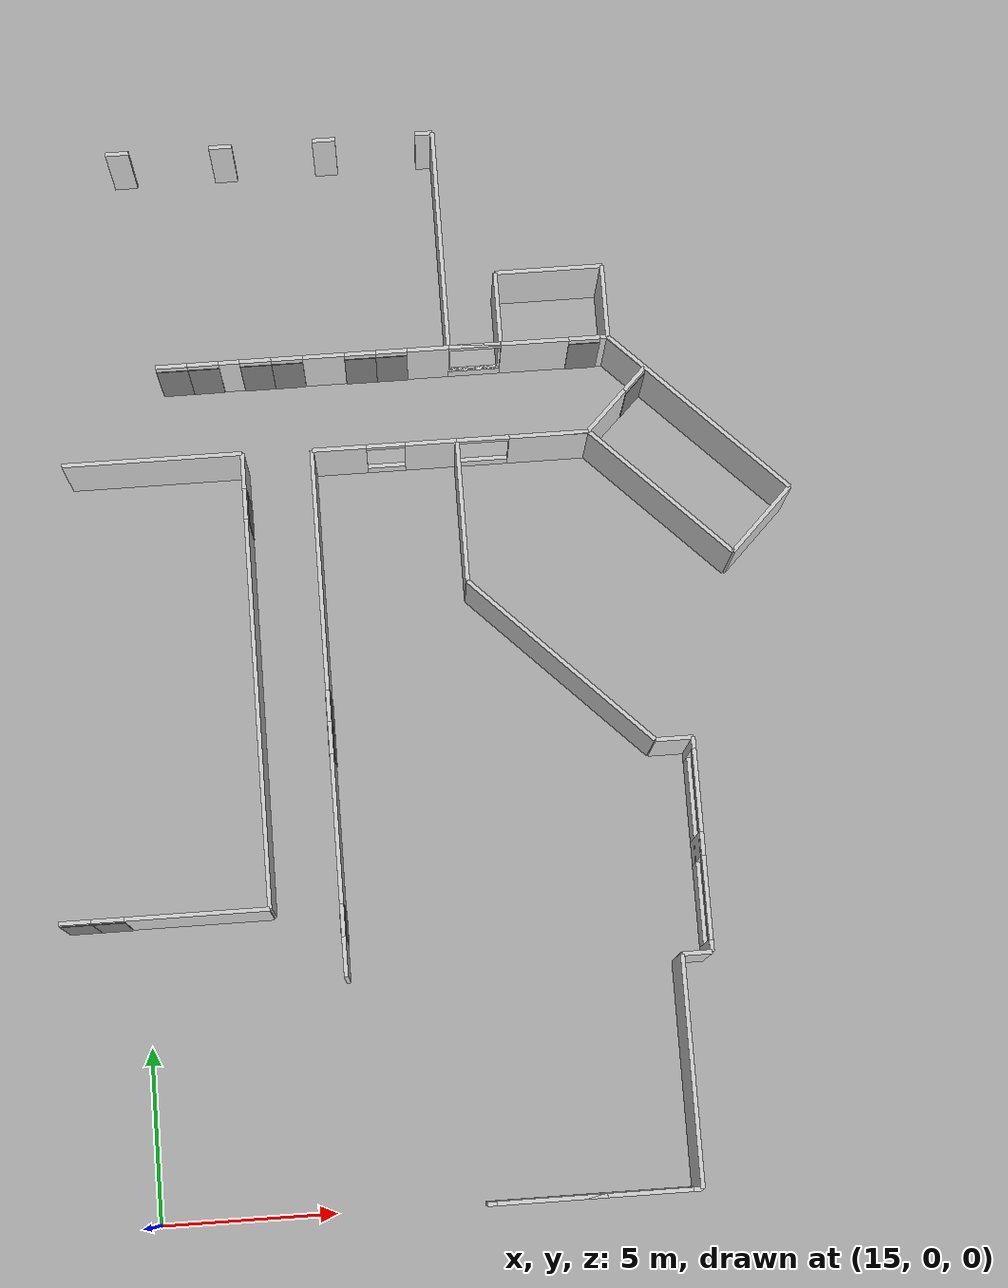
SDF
<sdf version="1.10">
 <model name="fourth_floor">
  <static>true</static>
  <link name="exteriors_018_windows_block_post_11">
   <pose>15.5797 31.0451 1.3750 0 0 0.000000</pose>
   <collision name="exteriors_018_windows_block_post_11_collision">
    <geometry><box><size>0.6794 0.1199 2.7501</size></box></geometry>
   </collision>
   <visual name="exteriors_018_windows_block_post_11_visual">
    <geometry><box><size>0.6794 0.1199 2.7501</size></box></geometry>
    <material><ambient>0.82 0.82 0.82 1</ambient><diffuse>0.82 0.82 0.82 1</diffuse></material>
   </visual>
  </link>
  <link name="exteriors_018_windows_block_post_12">
   <pose>18.6277 31.0451 1.3750 0 0 0.000000</pose>
   <collision name="exteriors_018_windows_block_post_12_collision">
    <geometry><box><size>0.6794 0.1199 2.7501</size></box></geometry>
   </collision>
   <visual name="exteriors_018_windows_block_post_12_visual">
    <geometry><box><size>0.6794 0.1199 2.7501</size></box></geometry>
    <material><ambient>0.82 0.82 0.82 1</ambient><diffuse>0.82 0.82 0.82 1</diffuse></material>
   </visual>
  </link>
  <link name="exteriors_018_windows_block_post_13">
   <pose>21.6757 31.0451 1.3750 0 0 0.000000</pose>
   <collision name="exteriors_018_windows_block_post_13_collision">
    <geometry><box><size>0.6794 0.1199 2.7501</size></box></geometry>
   </collision>
   <visual name="exteriors_018_windows_block_post_13_visual">
    <geometry><box><size>0.6794 0.1199 2.7501</size></box></geometry>
    <material><ambient>0.82 0.82 0.82 1</ambient><diffuse>0.82 0.82 0.82 1</diffuse></material>
   </visual>
  </link>
  <link name="exteriors_019_solid">
   <pose>24.6380 31.0451 1.3750 0 0 0.000000</pose>
   <collision name="exteriors_019_solid_collision">
    <geometry><box><size>0.5080 0.1199 2.7501</size></box></geometry>
   </collision>
   <visual name="exteriors_019_solid_visual">
    <geometry><box><size>0.5080 0.1199 2.7501</size></box></geometry>
    <material><ambient>0.82 0.82 0.82 1</ambient><diffuse>0.82 0.82 0.82 1</diffuse></material>
   </visual>
  </link>
  <link name="exteriors_021_solid">
   <pose>24.8920 27.7431 1.3750 0 0 4.712389</pose>
   <collision name="exteriors_021_solid_collision">
    <geometry><box><size>6.6040 0.1199 2.7501</size></box></geometry>
   </collision>
   <visual name="exteriors_021_solid_visual">
    <geometry><box><size>6.6040 0.1199 2.7501</size></box></geometry>
    <material><ambient>0.82 0.82 0.82 1</ambient><diffuse>0.82 0.82 0.82 1</diffuse></material>
   </visual>
  </link>
  <link name="exteriors_023_windows_block_lower_strip">
   <pose>25.6540 24.4412 0.2540 0 0 0.000000</pose>
   <collision name="exteriors_023_windows_block_lower_strip_collision">
    <geometry><box><size>1.5240 0.1199 0.5080</size></box></geometry>
   </collision>
   <visual name="exteriors_023_windows_block_lower_strip_visual">
    <geometry><box><size>1.5240 0.1199 0.5080</size></box></geometry>
    <material><ambient>0.82 0.82 0.82 1</ambient><diffuse>0.82 0.82 0.82 1</diffuse></material>
   </visual>
  </link>
  <link name="exteriors_023_windows_block_upper_strip">
   <pose>25.6540 24.4412 2.6450 0 0 0.000000</pose>
   <collision name="exteriors_023_windows_block_upper_strip_collision">
    <geometry><box><size>1.5240 0.1199 0.2101</size></box></geometry>
   </collision>
   <visual name="exteriors_023_windows_block_upper_strip_visual">
    <geometry><box><size>1.5240 0.1199 0.2101</size></box></geometry>
    <material><ambient>0.82 0.82 0.82 1</ambient><diffuse>0.82 0.82 0.82 1</diffuse></material>
   </visual>
  </link>
  <link name="exteriors_025_solid">
   <pose>26.4160 25.5206 1.3750 0 0 1.570796</pose>
   <collision name="exteriors_025_solid_collision">
    <geometry><box><size>2.1590 0.1199 2.7501</size></box></geometry>
   </collision>
   <visual name="exteriors_025_solid_visual">
    <geometry><box><size>2.1590 0.1199 2.7501</size></box></geometry>
    <material><ambient>0.82 0.82 0.82 1</ambient><diffuse>0.82 0.82 0.82 1</diffuse></material>
   </visual>
  </link>
  <link name="exteriors_027_solid">
   <pose>27.9781 26.6001 1.3750 0 0 0.000000</pose>
   <collision name="exteriors_027_solid_collision">
    <geometry><box><size>3.1242 0.1199 2.7501</size></box></geometry>
   </collision>
   <visual name="exteriors_027_solid_visual">
    <geometry><box><size>3.1242 0.1199 2.7501</size></box></geometry>
    <material><ambient>0.82 0.82 0.82 1</ambient><diffuse>0.82 0.82 0.82 1</diffuse></material>
   </visual>
  </link>
  <link name="exteriors_029_solid">
   <pose>29.5402 25.5206 1.3750 0 0 4.712389</pose>
   <collision name="exteriors_029_solid_collision">
    <geometry><box><size>2.1590 0.1199 2.7501</size></box></geometry>
   </collision>
   <visual name="exteriors_029_solid_visual">
    <geometry><box><size>2.1590 0.1199 2.7501</size></box></geometry>
    <material><ambient>0.82 0.82 0.82 1</ambient><diffuse>0.82 0.82 0.82 1</diffuse></material>
   </visual>
  </link>
  <link name="exteriors_031_solid">
   <pose>31.9649 22.0165 1.3750 0 0 5.497787</pose>
   <collision name="exteriors_031_solid_collision">
    <geometry><box><size>6.8580 0.1199 2.7501</size></box></geometry>
   </collision>
   <visual name="exteriors_031_solid_visual">
    <geometry><box><size>6.8580 0.1199 2.7501</size></box></geometry>
    <material><ambient>0.82 0.82 0.82 1</ambient><diffuse>0.82 0.82 0.82 1</diffuse></material>
   </visual>
  </link>
  <link name="exteriors_033_solid">
   <pose>33.4915 18.6938 1.3750 0 0 3.926991</pose>
   <collision name="exteriors_033_solid_collision">
    <geometry><box><size>2.5400 0.1199 2.7501</size></box></geometry>
   </collision>
   <visual name="exteriors_033_solid_visual">
    <geometry><box><size>2.5400 0.1199 2.7501</size></box></geometry>
    <material><ambient>0.82 0.82 0.82 1</ambient><diffuse>0.82 0.82 0.82 1</diffuse></material>
   </visual>
  </link>
  <link name="exteriors_035_solid">
   <pose>30.6717 19.7175 1.3750 0 0 2.356194</pose>
   <collision name="exteriors_035_solid_collision">
    <geometry><box><size>5.4356 0.1199 2.7501</size></box></geometry>
   </collision>
   <visual name="exteriors_035_solid_visual">
    <geometry><box><size>5.4356 0.1199 2.7501</size></box></geometry>
    <material><ambient>0.82 0.82 0.82 1</ambient><diffuse>0.82 0.82 0.82 1</diffuse></material>
   </visual>
  </link>
  <link name="exteriors_037_solid">
   <pose>27.6069 21.6393 1.3750 0 0 3.141593</pose>
   <collision name="exteriors_037_solid_collision">
    <geometry><box><size>2.2860 0.1199 2.7501</size></box></geometry>
   </collision>
   <visual name="exteriors_037_solid_visual">
    <geometry><box><size>2.2860 0.1199 2.7501</size></box></geometry>
    <material><ambient>0.82 0.82 0.82 1</ambient><diffuse>0.82 0.82 0.82 1</diffuse></material>
   </visual>
  </link>
  <link name="exteriors_038_windows_block_lower_strip">
   <pose>25.7019 21.6393 0.2540 0 0 3.141593</pose>
   <collision name="exteriors_038_windows_block_lower_strip_collision">
    <geometry><box><size>1.5240 0.1199 0.5080</size></box></geometry>
   </collision>
   <visual name="exteriors_038_windows_block_lower_strip_visual">
    <geometry><box><size>1.5240 0.1199 0.5080</size></box></geometry>
    <material><ambient>0.82 0.82 0.82 1</ambient><diffuse>0.82 0.82 0.82 1</diffuse></material>
   </visual>
  </link>
  <link name="exteriors_038_windows_block_upper_strip">
   <pose>25.7019 21.6393 2.6450 0 0 3.141593</pose>
   <collision name="exteriors_038_windows_block_upper_strip_collision">
    <geometry><box><size>1.5240 0.1199 0.2101</size></box></geometry>
   </collision>
   <visual name="exteriors_038_windows_block_upper_strip_visual">
    <geometry><box><size>1.5240 0.1199 0.2101</size></box></geometry>
    <material><ambient>0.82 0.82 0.82 1</ambient><diffuse>0.82 0.82 0.82 1</diffuse></material>
   </visual>
  </link>
  <link name="exteriors_040_solid">
   <pose>24.9399 19.5565 1.3750 0 0 4.712389</pose>
   <collision name="exteriors_040_solid_collision">
    <geometry><box><size>4.1656 0.1199 2.7501</size></box></geometry>
   </collision>
   <visual name="exteriors_040_solid_visual">
    <geometry><box><size>4.1656 0.1199 2.7501</size></box></geometry>
    <material><ambient>0.82 0.82 0.82 1</ambient><diffuse>0.82 0.82 0.82 1</diffuse></material>
   </visual>
  </link>
  <link name="exteriors_042_solid">
   <pose>27.4185 14.9952 1.3750 0 0 5.497787</pose>
   <collision name="exteriors_042_solid_collision">
    <geometry><box><size>7.0104 0.1199 2.7501</size></box></geometry>
   </collision>
   <visual name="exteriors_042_solid_visual">
    <geometry><box><size>7.0104 0.1199 2.7501</size></box></geometry>
    <material><ambient>0.82 0.82 0.82 1</ambient><diffuse>0.82 0.82 0.82 1</diffuse></material>
   </visual>
  </link>
  <link name="exteriors_044_solid">
   <pose>30.4304 12.5166 1.3750 0 0 0.000000</pose>
   <collision name="exteriors_044_solid_collision">
    <geometry><box><size>1.0668 0.1199 2.7501</size></box></geometry>
   </collision>
   <visual name="exteriors_044_solid_visual">
    <geometry><box><size>1.0668 0.1199 2.7501</size></box></geometry>
    <material><ambient>0.82 0.82 0.82 1</ambient><diffuse>0.82 0.82 0.82 1</diffuse></material>
   </visual>
  </link>
  <link name="exteriors_046_solid">
   <pose>30.9638 12.3515 1.3750 0 0 4.712389</pose>
   <collision name="exteriors_046_solid_collision">
    <geometry><box><size>0.3302 0.1199 2.7501</size></box></geometry>
   </collision>
   <visual name="exteriors_046_solid_visual">
    <geometry><box><size>0.3302 0.1199 2.7501</size></box></geometry>
    <material><ambient>0.82 0.82 0.82 1</ambient><diffuse>0.82 0.82 0.82 1</diffuse></material>
   </visual>
  </link>
  <link name="exteriors_047_windows_block_lower_strip">
   <pose>30.9638 9.4781 0.5461 0 0 4.712389</pose>
   <collision name="exteriors_047_windows_block_lower_strip_collision">
    <geometry><box><size>5.4165 0.1199 1.0922</size></box></geometry>
   </collision>
   <visual name="exteriors_047_windows_block_lower_strip_visual">
    <geometry><box><size>5.4165 0.1199 1.0922</size></box></geometry>
    <material><ambient>0.82 0.82 0.82 1</ambient><diffuse>0.82 0.82 0.82 1</diffuse></material>
   </visual>
  </link>
  <link name="exteriors_047_windows_block_upper_strip">
   <pose>30.9638 9.4781 2.5942 0 0 4.712389</pose>
   <collision name="exteriors_047_windows_block_upper_strip_collision">
    <geometry><box><size>5.4165 0.1199 0.3117</size></box></geometry>
   </collision>
   <visual name="exteriors_047_windows_block_upper_strip_visual">
    <geometry><box><size>5.4165 0.1199 0.3117</size></box></geometry>
    <material><ambient>0.82 0.82 0.82 1</ambient><diffuse>0.82 0.82 0.82 1</diffuse></material>
   </visual>
  </link>
  <link name="exteriors_047_windows_block_post_1">
   <pose>30.9638 9.4781 1.3750 0 0 4.712389</pose>
   <collision name="exteriors_047_windows_block_post_1_collision">
    <geometry><box><size>0.6794 0.1199 2.7501</size></box></geometry>
   </collision>
   <visual name="exteriors_047_windows_block_post_1_visual">
    <geometry><box><size>0.6794 0.1199 2.7501</size></box></geometry>
    <material><ambient>0.82 0.82 0.82 1</ambient><diffuse>0.82 0.82 0.82 1</diffuse></material>
   </visual>
  </link>
  <link name="exteriors_048_solid">
   <pose>30.9638 6.6048 1.3750 0 0 4.712389</pose>
   <collision name="exteriors_048_solid_collision">
    <geometry><box><size>0.3302 0.1199 2.7501</size></box></geometry>
   </collision>
   <visual name="exteriors_048_solid_visual">
    <geometry><box><size>0.3302 0.1199 2.7501</size></box></geometry>
    <material><ambient>0.82 0.82 0.82 1</ambient><diffuse>0.82 0.82 0.82 1</diffuse></material>
   </visual>
  </link>
  <link name="exteriors_050_solid">
   <pose>30.5447 6.4397 1.3750 0 0 3.141593</pose>
   <collision name="exteriors_050_solid_collision">
    <geometry><box><size>0.8382 0.1199 2.7501</size></box></geometry>
   </collision>
   <visual name="exteriors_050_solid_visual">
    <geometry><box><size>0.8382 0.1199 2.7501</size></box></geometry>
    <material><ambient>0.82 0.82 0.82 1</ambient><diffuse>0.82 0.82 0.82 1</diffuse></material>
   </visual>
  </link>
  <link name="exteriors_052_solid">
   <pose>30.1256 3.2139 1.3750 0 0 4.712389</pose>
   <collision name="exteriors_052_solid_collision">
    <geometry><box><size>6.4516 0.1199 2.7501</size></box></geometry>
   </collision>
   <visual name="exteriors_052_solid_visual">
    <geometry><box><size>6.4516 0.1199 2.7501</size></box></geometry>
    <material><ambient>0.82 0.82 0.82 1</ambient><diffuse>0.82 0.82 0.82 1</diffuse></material>
   </visual>
  </link>
  <link name="exteriors_054_solid">
   <pose>29.9986 -0.0119 1.3750 0 0 3.141593</pose>
   <collision name="exteriors_054_solid_collision">
    <geometry><box><size>0.2540 0.1199 2.7501</size></box></geometry>
   </collision>
   <visual name="exteriors_054_solid_visual">
    <geometry><box><size>0.2540 0.1199 2.7501</size></box></geometry>
    <material><ambient>0.82 0.82 0.82 1</ambient><diffuse>0.82 0.82 0.82 1</diffuse></material>
   </visual>
  </link>
  <link name="exteriors_055_windows_block_lower_strip">
   <pose>27.1634 -0.0119 0.5461 0 0 3.141593</pose>
   <collision name="exteriors_055_windows_block_lower_strip_collision">
    <geometry><box><size>5.4165 0.1199 1.0922</size></box></geometry>
   </collision>
   <visual name="exteriors_055_windows_block_lower_strip_visual">
    <geometry><box><size>5.4165 0.1199 1.0922</size></box></geometry>
    <material><ambient>0.82 0.82 0.82 1</ambient><diffuse>0.82 0.82 0.82 1</diffuse></material>
   </visual>
  </link>
  <link name="exteriors_055_windows_block_upper_strip">
   <pose>27.1634 -0.0119 2.5942 0 0 3.141593</pose>
   <collision name="exteriors_055_windows_block_upper_strip_collision">
    <geometry><box><size>5.4165 0.1199 0.3117</size></box></geometry>
   </collision>
   <visual name="exteriors_055_windows_block_upper_strip_visual">
    <geometry><box><size>5.4165 0.1199 0.3117</size></box></geometry>
    <material><ambient>0.82 0.82 0.82 1</ambient><diffuse>0.82 0.82 0.82 1</diffuse></material>
   </visual>
  </link>
  <link name="exteriors_055_windows_block_post_1">
   <pose>27.1634 -0.0119 1.3750 0 0 3.141593</pose>
   <collision name="exteriors_055_windows_block_post_1_collision">
    <geometry><box><size>0.6794 0.1199 2.7501</size></box></geometry>
   </collision>
   <visual name="exteriors_055_windows_block_post_1_visual">
    <geometry><box><size>0.6794 0.1199 2.7501</size></box></geometry>
    <material><ambient>0.82 0.82 0.82 1</ambient><diffuse>0.82 0.82 0.82 1</diffuse></material>
   </visual>
  </link>
  <link name="exteriors_056_solid">
   <pose>24.3281 -0.0119 1.3750 0 0 3.141593</pose>
   <collision name="exteriors_056_solid_collision">
    <geometry><box><size>0.2540 0.1199 2.7501</size></box></geometry>
   </collision>
   <visual name="exteriors_056_solid_visual">
    <geometry><box><size>0.2540 0.1199 2.7501</size></box></geometry>
    <material><ambient>0.82 0.82 0.82 1</ambient><diffuse>0.82 0.82 0.82 1</diffuse></material>
   </visual>
  </link>
  <link name="hallways_040_door_lintel">
   <pose>16.8275 24.4399 2.5942 0 0 0.000000</pose>
   <collision name="hallways_040_door_lintel_collision">
    <geometry><box><size>0.9144 0.1199 0.3117</size></box></geometry>
   </collision>
   <visual name="hallways_040_door_lintel_visual">
    <geometry><box><size>0.9144 0.1199 0.3117</size></box></geometry>
    <material><ambient>0.82 0.82 0.82 1</ambient><diffuse>0.82 0.82 0.82 1</diffuse></material>
   </visual>
  </link>
  <link name="hallways_041_door_lintel">
   <pose>17.7419 24.4399 2.5942 0 0 0.000000</pose>
   <collision name="hallways_041_door_lintel_collision">
    <geometry><box><size>0.9144 0.1199 0.3117</size></box></geometry>
   </collision>
   <visual name="hallways_041_door_lintel_visual">
    <geometry><box><size>0.9144 0.1199 0.3117</size></box></geometry>
    <material><ambient>0.82 0.82 0.82 1</ambient><diffuse>0.82 0.82 0.82 1</diffuse></material>
   </visual>
  </link>
  <link name="hallways_042_solid">
   <pose>18.5039 24.4399 1.3750 0 0 0.000000</pose>
   <collision name="hallways_042_solid_collision">
    <geometry><box><size>0.6096 0.1199 2.7501</size></box></geometry>
   </collision>
   <visual name="hallways_042_solid_visual">
    <geometry><box><size>0.6096 0.1199 2.7501</size></box></geometry>
    <material><ambient>0.82 0.82 0.82 1</ambient><diffuse>0.82 0.82 0.82 1</diffuse></material>
   </visual>
  </link>
  <link name="hallways_043_door_lintel">
   <pose>19.2659 24.4399 2.5942 0 0 0.000000</pose>
   <collision name="hallways_043_door_lintel_collision">
    <geometry><box><size>0.9144 0.1199 0.3117</size></box></geometry>
   </collision>
   <visual name="hallways_043_door_lintel_visual">
    <geometry><box><size>0.9144 0.1199 0.3117</size></box></geometry>
    <material><ambient>0.82 0.82 0.82 1</ambient><diffuse>0.82 0.82 0.82 1</diffuse></material>
   </visual>
  </link>
  <link name="hallways_044_door_lintel">
   <pose>20.1803 24.4399 2.5942 0 0 0.000000</pose>
   <collision name="hallways_044_door_lintel_collision">
    <geometry><box><size>0.9144 0.1199 0.3117</size></box></geometry>
   </collision>
   <visual name="hallways_044_door_lintel_visual">
    <geometry><box><size>0.9144 0.1199 0.3117</size></box></geometry>
    <material><ambient>0.82 0.82 0.82 1</ambient><diffuse>0.82 0.82 0.82 1</diffuse></material>
   </visual>
  </link>
  <link name="hallways_045_solid">
   <pose>21.2471 24.4399 1.3750 0 0 0.000000</pose>
   <collision name="hallways_045_solid_collision">
    <geometry><box><size>1.2192 0.1199 2.7501</size></box></geometry>
   </collision>
   <visual name="hallways_045_solid_visual">
    <geometry><box><size>1.2192 0.1199 2.7501</size></box></geometry>
    <material><ambient>0.82 0.82 0.82 1</ambient><diffuse>0.82 0.82 0.82 1</diffuse></material>
   </visual>
  </link>
  <link name="hallways_046_door_lintel">
   <pose>22.3139 24.4399 2.5942 0 0 0.000000</pose>
   <collision name="hallways_046_door_lintel_collision">
    <geometry><box><size>0.9144 0.1199 0.3117</size></box></geometry>
   </collision>
   <visual name="hallways_046_door_lintel_visual">
    <geometry><box><size>0.9144 0.1199 0.3117</size></box></geometry>
    <material><ambient>0.82 0.82 0.82 1</ambient><diffuse>0.82 0.82 0.82 1</diffuse></material>
   </visual>
  </link>
  <link name="hallways_047_door_lintel">
   <pose>23.2283 24.4399 2.5942 0 0 0.000000</pose>
   <collision name="hallways_047_door_lintel_collision">
    <geometry><box><size>0.9144 0.1199 0.3117</size></box></geometry>
   </collision>
   <visual name="hallways_047_door_lintel_visual">
    <geometry><box><size>0.9144 0.1199 0.3117</size></box></geometry>
    <material><ambient>0.82 0.82 0.82 1</ambient><diffuse>0.82 0.82 0.82 1</diffuse></material>
   </visual>
  </link>
  <link name="hallways_048_solid">
   <pose>24.2951 24.4399 1.3750 0 0 0.000000</pose>
   <collision name="hallways_048_solid_collision">
    <geometry><box><size>1.2192 0.1199 2.7501</size></box></geometry>
   </collision>
   <visual name="hallways_048_solid_visual">
    <geometry><box><size>1.2192 0.1199 2.7501</size></box></geometry>
    <material><ambient>0.82 0.82 0.82 1</ambient><diffuse>0.82 0.82 0.82 1</diffuse></material>
   </visual>
  </link>
  <link name="hallways_049_windows_block_lower_strip">
   <pose>25.6667 24.4399 0.2540 0 0 0.000000</pose>
   <collision name="hallways_049_windows_block_lower_strip_collision">
    <geometry><box><size>1.5240 0.1199 0.5080</size></box></geometry>
   </collision>
   <visual name="hallways_049_windows_block_lower_strip_visual">
    <geometry><box><size>1.5240 0.1199 0.5080</size></box></geometry>
    <material><ambient>0.82 0.82 0.82 1</ambient><diffuse>0.82 0.82 0.82 1</diffuse></material>
   </visual>
  </link>
  <link name="hallways_049_windows_block_upper_strip">
   <pose>25.6667 24.4399 2.6450 0 0 0.000000</pose>
   <collision name="hallways_049_windows_block_upper_strip_collision">
    <geometry><box><size>1.5240 0.1199 0.2101</size></box></geometry>
   </collision>
   <visual name="hallways_049_windows_block_upper_strip_visual">
    <geometry><box><size>1.5240 0.1199 0.2101</size></box></geometry>
    <material><ambient>0.82 0.82 0.82 1</ambient><diffuse>0.82 0.82 0.82 1</diffuse></material>
   </visual>
  </link>
  <link name="hallways_050_solid">
   <pose>27.4193 24.4399 1.3750 0 0 0.000000</pose>
   <collision name="hallways_050_solid_collision">
    <geometry><box><size>1.9812 0.1199 2.7501</size></box></geometry>
   </collision>
   <visual name="hallways_050_solid_visual">
    <geometry><box><size>1.9812 0.1199 2.7501</size></box></geometry>
    <material><ambient>0.82 0.82 0.82 1</ambient><diffuse>0.82 0.82 0.82 1</diffuse></material>
   </visual>
  </link>
  <link name="hallways_051_door_lintel">
   <pose>28.8671 24.4399 2.5942 0 0 0.000000</pose>
   <collision name="hallways_051_door_lintel_collision">
    <geometry><box><size>0.9144 0.1199 0.3117</size></box></geometry>
   </collision>
   <visual name="hallways_051_door_lintel_visual">
    <geometry><box><size>0.9144 0.1199 0.3117</size></box></geometry>
    <material><ambient>0.82 0.82 0.82 1</ambient><diffuse>0.82 0.82 0.82 1</diffuse></material>
   </visual>
  </link>
  <link name="hallways_052_solid">
   <pose>29.4259 24.4399 1.3750 0 0 0.000000</pose>
   <collision name="hallways_052_solid_collision">
    <geometry><box><size>0.2032 0.1199 2.7501</size></box></geometry>
   </collision>
   <visual name="hallways_052_solid_visual">
    <geometry><box><size>0.2032 0.1199 2.7501</size></box></geometry>
    <material><ambient>0.82 0.82 0.82 1</ambient><diffuse>0.82 0.82 0.82 1</diffuse></material>
   </visual>
  </link>
  <link name="hallways_054_solid">
   <pose>30.0304 23.9370 1.3750 0 0 5.497787</pose>
   <collision name="hallways_054_solid_collision">
    <geometry><box><size>1.4224 0.1199 2.7501</size></box></geometry>
   </collision>
   <visual name="hallways_054_solid_visual">
    <geometry><box><size>1.4224 0.1199 2.7501</size></box></geometry>
    <material><ambient>0.82 0.82 0.82 1</ambient><diffuse>0.82 0.82 0.82 1</diffuse></material>
   </visual>
  </link>
  <link name="hallways_056_door_lintel">
   <pose>30.2100 23.1108 2.5942 0 0 3.926991</pose>
   <collision name="hallways_056_door_lintel_collision">
    <geometry><box><size>0.9144 0.1199 0.3117</size></box></geometry>
   </collision>
   <visual name="hallways_056_door_lintel_visual">
    <geometry><box><size>0.9144 0.1199 0.3117</size></box></geometry>
    <material><ambient>0.82 0.82 0.82 1</ambient><diffuse>0.82 0.82 0.82 1</diffuse></material>
   </visual>
  </link>
  <link name="hallways_057_solid">
   <pose>29.3120 22.2128 1.3750 0 0 3.926991</pose>
   <collision name="hallways_057_solid_collision">
    <geometry><box><size>1.6256 0.1199 2.7501</size></box></geometry>
   </collision>
   <visual name="hallways_057_solid_visual">
    <geometry><box><size>1.6256 0.1199 2.7501</size></box></geometry>
    <material><ambient>0.82 0.82 0.82 1</ambient><diffuse>0.82 0.82 0.82 1</diffuse></material>
   </visual>
  </link>
  <link name="hallways_059_solid">
   <pose>27.5942 21.6380 1.3750 0 0 3.141593</pose>
   <collision name="hallways_059_solid_collision">
    <geometry><box><size>2.2860 0.1199 2.7501</size></box></geometry>
   </collision>
   <visual name="hallways_059_solid_visual">
    <geometry><box><size>2.2860 0.1199 2.7501</size></box></geometry>
    <material><ambient>0.82 0.82 0.82 1</ambient><diffuse>0.82 0.82 0.82 1</diffuse></material>
   </visual>
  </link>
  <link name="hallways_060_windows_block_lower_strip">
   <pose>25.6892 21.6380 0.2540 0 0 3.141593</pose>
   <collision name="hallways_060_windows_block_lower_strip_collision">
    <geometry><box><size>1.5240 0.1199 0.5080</size></box></geometry>
   </collision>
   <visual name="hallways_060_windows_block_lower_strip_visual">
    <geometry><box><size>1.5240 0.1199 0.5080</size></box></geometry>
    <material><ambient>0.82 0.82 0.82 1</ambient><diffuse>0.82 0.82 0.82 1</diffuse></material>
   </visual>
  </link>
  <link name="hallways_060_windows_block_upper_strip">
   <pose>25.6892 21.6380 2.6450 0 0 3.141593</pose>
   <collision name="hallways_060_windows_block_upper_strip_collision">
    <geometry><box><size>1.5240 0.1199 0.2101</size></box></geometry>
   </collision>
   <visual name="hallways_060_windows_block_upper_strip_visual">
    <geometry><box><size>1.5240 0.1199 0.2101</size></box></geometry>
    <material><ambient>0.82 0.82 0.82 1</ambient><diffuse>0.82 0.82 0.82 1</diffuse></material>
   </visual>
  </link>
  <link name="hallways_061_solid">
   <pose>24.1779 21.6380 1.3750 0 0 3.141593</pose>
   <collision name="hallways_061_solid_collision">
    <geometry><box><size>1.4986 0.1199 2.7501</size></box></geometry>
   </collision>
   <visual name="hallways_061_solid_visual">
    <geometry><box><size>1.4986 0.1199 2.7501</size></box></geometry>
    <material><ambient>0.82 0.82 0.82 1</ambient><diffuse>0.82 0.82 0.82 1</diffuse></material>
   </visual>
  </link>
  <link name="hallways_062_windows_block_lower_strip">
   <pose>22.8698 21.6380 0.2540 0 0 3.141593</pose>
   <collision name="hallways_062_windows_block_lower_strip_collision">
    <geometry><box><size>1.1176 0.1199 0.5080</size></box></geometry>
   </collision>
   <visual name="hallways_062_windows_block_lower_strip_visual">
    <geometry><box><size>1.1176 0.1199 0.5080</size></box></geometry>
    <material><ambient>0.82 0.82 0.82 1</ambient><diffuse>0.82 0.82 0.82 1</diffuse></material>
   </visual>
  </link>
  <link name="hallways_062_windows_block_upper_strip">
   <pose>22.8698 21.6380 2.6450 0 0 3.141593</pose>
   <collision name="hallways_062_windows_block_upper_strip_collision">
    <geometry><box><size>1.1176 0.1199 0.2101</size></box></geometry>
   </collision>
   <visual name="hallways_062_windows_block_upper_strip_visual">
    <geometry><box><size>1.1176 0.1199 0.2101</size></box></geometry>
    <material><ambient>0.82 0.82 0.82 1</ambient><diffuse>0.82 0.82 0.82 1</diffuse></material>
   </visual>
  </link>
  <link name="hallways_063_solid">
   <pose>21.5236 21.6380 1.3750 0 0 3.141593</pose>
   <collision name="hallways_063_solid_collision">
    <geometry><box><size>1.5748 0.1199 2.7501</size></box></geometry>
   </collision>
   <visual name="hallways_063_solid_visual">
    <geometry><box><size>1.5748 0.1199 2.7501</size></box></geometry>
    <material><ambient>0.82 0.82 0.82 1</ambient><diffuse>0.82 0.82 0.82 1</diffuse></material>
   </visual>
  </link>
  <link name="hallways_065_solid">
   <pose>20.7362 18.1201 1.3750 0 0 4.712389</pose>
   <collision name="hallways_065_solid_collision">
    <geometry><box><size>7.0358 0.1199 2.7501</size></box></geometry>
   </collision>
   <visual name="hallways_065_solid_visual">
    <geometry><box><size>7.0358 0.1199 2.7501</size></box></geometry>
    <material><ambient>0.82 0.82 0.82 1</ambient><diffuse>0.82 0.82 0.82 1</diffuse></material>
   </visual>
  </link>
  <link name="hallways_066_door_lintel">
   <pose>20.7362 14.1450 2.5942 0 0 4.712389</pose>
   <collision name="hallways_066_door_lintel_collision">
    <geometry><box><size>0.9144 0.1199 0.3117</size></box></geometry>
   </collision>
   <visual name="hallways_066_door_lintel_visual">
    <geometry><box><size>0.9144 0.1199 0.3117</size></box></geometry>
    <material><ambient>0.82 0.82 0.82 1</ambient><diffuse>0.82 0.82 0.82 1</diffuse></material>
   </visual>
  </link>
  <link name="hallways_067_door_lintel">
   <pose>20.7362 13.2306 2.5942 0 0 4.712389</pose>
   <collision name="hallways_067_door_lintel_collision">
    <geometry><box><size>0.9144 0.1199 0.3117</size></box></geometry>
   </collision>
   <visual name="hallways_067_door_lintel_visual">
    <geometry><box><size>0.9144 0.1199 0.3117</size></box></geometry>
    <material><ambient>0.82 0.82 0.82 1</ambient><diffuse>0.82 0.82 0.82 1</diffuse></material>
   </visual>
  </link>
  <link name="hallways_068_solid">
   <pose>20.7362 10.6398 1.3750 0 0 4.712389</pose>
   <collision name="hallways_068_solid_collision">
    <geometry><box><size>4.2672 0.1199 2.7501</size></box></geometry>
   </collision>
   <visual name="hallways_068_solid_visual">
    <geometry><box><size>4.2672 0.1199 2.7501</size></box></geometry>
    <material><ambient>0.82 0.82 0.82 1</ambient><diffuse>0.82 0.82 0.82 1</diffuse></material>
   </visual>
  </link>
  <link name="hallways_069_door_lintel">
   <pose>20.7362 8.0490 2.5942 0 0 4.712389</pose>
   <collision name="hallways_069_door_lintel_collision">
    <geometry><box><size>0.9144 0.1199 0.3117</size></box></geometry>
   </collision>
   <visual name="hallways_069_door_lintel_visual">
    <geometry><box><size>0.9144 0.1199 0.3117</size></box></geometry>
    <material><ambient>0.82 0.82 0.82 1</ambient><diffuse>0.82 0.82 0.82 1</diffuse></material>
   </visual>
  </link>
  <link name="hallways_070_solid">
   <pose>20.7362 7.0330 1.3750 0 0 4.712389</pose>
   <collision name="hallways_070_solid_collision">
    <geometry><box><size>1.1176 0.1199 2.7501</size></box></geometry>
   </collision>
   <visual name="hallways_070_solid_visual">
    <geometry><box><size>1.1176 0.1199 2.7501</size></box></geometry>
    <material><ambient>0.82 0.82 0.82 1</ambient><diffuse>0.82 0.82 0.82 1</diffuse></material>
   </visual>
  </link>
  <link name="inner_walls_1_008_door_lintel">
   <pose>13.2652 8.5090 2.5942 0 0 0.000000</pose>
   <collision name="inner_walls_1_008_door_lintel_collision">
    <geometry><box><size>0.9144 0.1199 0.3117</size></box></geometry>
   </collision>
   <visual name="inner_walls_1_008_door_lintel_visual">
    <geometry><box><size>0.9144 0.1199 0.3117</size></box></geometry>
    <material><ambient>0.82 0.82 0.82 1</ambient><diffuse>0.82 0.82 0.82 1</diffuse></material>
   </visual>
  </link>
  <link name="inner_walls_1_009_door_lintel">
   <pose>14.1795 8.5090 2.5942 0 0 0.000000</pose>
   <collision name="inner_walls_1_009_door_lintel_collision">
    <geometry><box><size>0.9144 0.1199 0.3117</size></box></geometry>
   </collision>
   <visual name="inner_walls_1_009_door_lintel_visual">
    <geometry><box><size>0.9144 0.1199 0.3117</size></box></geometry>
    <material><ambient>0.82 0.82 0.82 1</ambient><diffuse>0.82 0.82 0.82 1</diffuse></material>
   </visual>
  </link>
  <link name="inner_walls_1_010_solid">
   <pose>16.6814 8.5090 1.3750 0 0 0.000000</pose>
   <collision name="inner_walls_1_010_solid_collision">
    <geometry><box><size>4.0894 0.1199 2.7501</size></box></geometry>
   </collision>
   <visual name="inner_walls_1_010_solid_visual">
    <geometry><box><size>4.0894 0.1199 2.7501</size></box></geometry>
    <material><ambient>0.82 0.82 0.82 1</ambient><diffuse>0.82 0.82 0.82 1</diffuse></material>
   </visual>
  </link>
  <link name="inner_walls_1_012_solid">
   <pose>18.7262 14.1224 1.3750 0 0 1.570796</pose>
   <collision name="inner_walls_1_012_solid_collision">
    <geometry><box><size>11.2268 0.1199 2.7501</size></box></geometry>
   </collision>
   <visual name="inner_walls_1_012_solid_visual">
    <geometry><box><size>11.2268 0.1199 2.7501</size></box></geometry>
    <material><ambient>0.82 0.82 0.82 1</ambient><diffuse>0.82 0.82 0.82 1</diffuse></material>
   </visual>
  </link>
  <link name="inner_walls_1_013_door_lintel">
   <pose>18.7262 20.1930 2.5942 0 0 1.570796</pose>
   <collision name="inner_walls_1_013_door_lintel_collision">
    <geometry><box><size>0.9144 0.1199 0.3117</size></box></geometry>
   </collision>
   <visual name="inner_walls_1_013_door_lintel_visual">
    <geometry><box><size>0.9144 0.1199 0.3117</size></box></geometry>
    <material><ambient>0.82 0.82 0.82 1</ambient><diffuse>0.82 0.82 0.82 1</diffuse></material>
   </visual>
  </link>
  <link name="inner_walls_1_014_solid">
   <pose>18.7262 21.1709 1.3750 0 0 1.570796</pose>
   <collision name="inner_walls_1_014_solid_collision">
    <geometry><box><size>1.0414 0.1199 2.7501</size></box></geometry>
   </collision>
   <visual name="inner_walls_1_014_solid_visual">
    <geometry><box><size>1.0414 0.1199 2.7501</size></box></geometry>
    <material><ambient>0.82 0.82 0.82 1</ambient><diffuse>0.82 0.82 0.82 1</diffuse></material>
   </visual>
  </link>
  <link name="inner_walls_1_016_solid">
   <pose>16.1227 21.6916 1.3750 0 0 3.141593</pose>
   <collision name="inner_walls_1_016_solid_collision">
    <geometry><box><size>5.2070 0.1199 2.7501</size></box></geometry>
   </collision>
   <visual name="inner_walls_1_016_solid_visual">
    <geometry><box><size>5.2070 0.1199 2.7501</size></box></geometry>
    <material><ambient>0.82 0.82 0.82 1</ambient><diffuse>0.82 0.82 0.82 1</diffuse></material>
   </visual>
  </link>
  <link name="hallways_040_door_panel">
   <pose>16.8275 24.4399 1.2192 0 0 0.000000</pose>
   <inertial>
    <mass>25.0</mass>
    <inertia><ixx>12.4355</ixx><ixy>0</ixy><ixz>0</ixz><iyy>14.1290</iyy><iyz>0</iyz><izz>1.7903</izz></inertia>
   </inertial>
   <collision name="hallways_040_door_panel_collision">
    <geometry><box><size>0.9144 0.1524 2.4384</size></box></geometry>
    <surface>
     <friction><ode><mu>0.6</mu><mu2>0.6</mu2></ode></friction>
     <contact><ode><kp>1e6</kp><kd>1.0</kd></ode></contact>
    </surface>
   </collision>
   <visual name="hallways_040_door_panel_visual">
    <geometry><box><size>0.9144 0.1524 2.4384</size></box></geometry>
    <material>
     <ambient>0.5 0.5 0.5 1.0</ambient>
     <diffuse>0.5 0.5 0.5 1.0</diffuse>
     <specular>0.2 0.2 0.2 1.0</specular>
     <emissive>0 0 0 1.0</emissive>
    </material>
   </visual>
  </link>
  <link name="hallways_041_door_panel">
   <pose>17.7419 24.4399 1.2192 0 0 0.000000</pose>
   <inertial>
    <mass>25.0</mass>
    <inertia><ixx>12.4355</ixx><ixy>0</ixy><ixz>0</ixz><iyy>14.1290</iyy><iyz>0</iyz><izz>1.7903</izz></inertia>
   </inertial>
   <collision name="hallways_041_door_panel_collision">
    <geometry><box><size>0.9144 0.1524 2.4384</size></box></geometry>
    <surface>
     <friction><ode><mu>0.6</mu><mu2>0.6</mu2></ode></friction>
     <contact><ode><kp>1e6</kp><kd>1.0</kd></ode></contact>
    </surface>
   </collision>
   <visual name="hallways_041_door_panel_visual">
    <geometry><box><size>0.9144 0.1524 2.4384</size></box></geometry>
    <material>
     <ambient>0.5 0.5 0.5 1.0</ambient>
     <diffuse>0.5 0.5 0.5 1.0</diffuse>
     <specular>0.2 0.2 0.2 1.0</specular>
     <emissive>0 0 0 1.0</emissive>
    </material>
   </visual>
  </link>
  <link name="hallways_043_door_panel">
   <pose>19.2659 24.4399 1.2192 0 0 0.000000</pose>
   <inertial>
    <mass>25.0</mass>
    <inertia><ixx>12.4355</ixx><ixy>0</ixy><ixz>0</ixz><iyy>14.1290</iyy><iyz>0</iyz><izz>1.7903</izz></inertia>
   </inertial>
   <collision name="hallways_043_door_panel_collision">
    <geometry><box><size>0.9144 0.1524 2.4384</size></box></geometry>
    <surface>
     <friction><ode><mu>0.6</mu><mu2>0.6</mu2></ode></friction>
     <contact><ode><kp>1e6</kp><kd>1.0</kd></ode></contact>
    </surface>
   </collision>
   <visual name="hallways_043_door_panel_visual">
    <geometry><box><size>0.9144 0.1524 2.4384</size></box></geometry>
    <material>
     <ambient>0.5 0.5 0.5 1.0</ambient>
     <diffuse>0.5 0.5 0.5 1.0</diffuse>
     <specular>0.2 0.2 0.2 1.0</specular>
     <emissive>0 0 0 1.0</emissive>
    </material>
   </visual>
  </link>
  <link name="hallways_044_door_panel">
   <pose>20.1803 24.4399 1.2192 0 0 0.000000</pose>
   <inertial>
    <mass>25.0</mass>
    <inertia><ixx>12.4355</ixx><ixy>0</ixy><ixz>0</ixz><iyy>14.1290</iyy><iyz>0</iyz><izz>1.7903</izz></inertia>
   </inertial>
   <collision name="hallways_044_door_panel_collision">
    <geometry><box><size>0.9144 0.1524 2.4384</size></box></geometry>
    <surface>
     <friction><ode><mu>0.6</mu><mu2>0.6</mu2></ode></friction>
     <contact><ode><kp>1e6</kp><kd>1.0</kd></ode></contact>
    </surface>
   </collision>
   <visual name="hallways_044_door_panel_visual">
    <geometry><box><size>0.9144 0.1524 2.4384</size></box></geometry>
    <material>
     <ambient>0.5 0.5 0.5 1.0</ambient>
     <diffuse>0.5 0.5 0.5 1.0</diffuse>
     <specular>0.2 0.2 0.2 1.0</specular>
     <emissive>0 0 0 1.0</emissive>
    </material>
   </visual>
  </link>
  <link name="hallways_046_door_panel">
   <pose>22.3139 24.4399 1.2192 0 0 0.000000</pose>
   <inertial>
    <mass>25.0</mass>
    <inertia><ixx>12.4355</ixx><ixy>0</ixy><ixz>0</ixz><iyy>14.1290</iyy><iyz>0</iyz><izz>1.7903</izz></inertia>
   </inertial>
   <collision name="hallways_046_door_panel_collision">
    <geometry><box><size>0.9144 0.1524 2.4384</size></box></geometry>
    <surface>
     <friction><ode><mu>0.6</mu><mu2>0.6</mu2></ode></friction>
     <contact><ode><kp>1e6</kp><kd>1.0</kd></ode></contact>
    </surface>
   </collision>
   <visual name="hallways_046_door_panel_visual">
    <geometry><box><size>0.9144 0.1524 2.4384</size></box></geometry>
    <material>
     <ambient>0.5 0.5 0.5 1.0</ambient>
     <diffuse>0.5 0.5 0.5 1.0</diffuse>
     <specular>0.2 0.2 0.2 1.0</specular>
     <emissive>0 0 0 1.0</emissive>
    </material>
   </visual>
  </link>
  <link name="hallways_047_door_panel">
   <pose>23.2283 24.4399 1.2192 0 0 0.000000</pose>
   <inertial>
    <mass>25.0</mass>
    <inertia><ixx>12.4355</ixx><ixy>0</ixy><ixz>0</ixz><iyy>14.1290</iyy><iyz>0</iyz><izz>1.7903</izz></inertia>
   </inertial>
   <collision name="hallways_047_door_panel_collision">
    <geometry><box><size>0.9144 0.1524 2.4384</size></box></geometry>
    <surface>
     <friction><ode><mu>0.6</mu><mu2>0.6</mu2></ode></friction>
     <contact><ode><kp>1e6</kp><kd>1.0</kd></ode></contact>
    </surface>
   </collision>
   <visual name="hallways_047_door_panel_visual">
    <geometry><box><size>0.9144 0.1524 2.4384</size></box></geometry>
    <material>
     <ambient>0.5 0.5 0.5 1.0</ambient>
     <diffuse>0.5 0.5 0.5 1.0</diffuse>
     <specular>0.2 0.2 0.2 1.0</specular>
     <emissive>0 0 0 1.0</emissive>
    </material>
   </visual>
  </link>
  <link name="hallways_051_door_panel">
   <pose>28.8671 24.4399 1.2192 0 0 0.000000</pose>
   <inertial>
    <mass>25.0</mass>
    <inertia><ixx>12.4355</ixx><ixy>0</ixy><ixz>0</ixz><iyy>14.1290</iyy><iyz>0</iyz><izz>1.7903</izz></inertia>
   </inertial>
   <collision name="hallways_051_door_panel_collision">
    <geometry><box><size>0.9144 0.1524 2.4384</size></box></geometry>
    <surface>
     <friction><ode><mu>0.6</mu><mu2>0.6</mu2></ode></friction>
     <contact><ode><kp>1e6</kp><kd>1.0</kd></ode></contact>
    </surface>
   </collision>
   <visual name="hallways_051_door_panel_visual">
    <geometry><box><size>0.9144 0.1524 2.4384</size></box></geometry>
    <material>
     <ambient>0.5 0.5 0.5 1.0</ambient>
     <diffuse>0.5 0.5 0.5 1.0</diffuse>
     <specular>0.2 0.2 0.2 1.0</specular>
     <emissive>0 0 0 1.0</emissive>
    </material>
   </visual>
  </link>
  <link name="hallways_056_door_panel">
   <pose>30.2100 23.1108 1.2192 0 0 3.926991</pose>
   <inertial>
    <mass>25.0</mass>
    <inertia><ixx>12.4355</ixx><ixy>0</ixy><ixz>0</ixz><iyy>14.1290</iyy><iyz>0</iyz><izz>1.7903</izz></inertia>
   </inertial>
   <collision name="hallways_056_door_panel_collision">
    <geometry><box><size>0.9144 0.1524 2.4384</size></box></geometry>
    <surface>
     <friction><ode><mu>0.6</mu><mu2>0.6</mu2></ode></friction>
     <contact><ode><kp>1e6</kp><kd>1.0</kd></ode></contact>
    </surface>
   </collision>
   <visual name="hallways_056_door_panel_visual">
    <geometry><box><size>0.9144 0.1524 2.4384</size></box></geometry>
    <material>
     <ambient>0.5 0.5 0.5 1.0</ambient>
     <diffuse>0.5 0.5 0.5 1.0</diffuse>
     <specular>0.2 0.2 0.2 1.0</specular>
     <emissive>0 0 0 1.0</emissive>
    </material>
   </visual>
  </link>
  <link name="hallways_066_door_panel">
   <pose>20.7362 14.1450 1.2192 0 0 4.712389</pose>
   <inertial>
    <mass>25.0</mass>
    <inertia><ixx>12.4355</ixx><ixy>0</ixy><ixz>0</ixz><iyy>14.1290</iyy><iyz>0</iyz><izz>1.7903</izz></inertia>
   </inertial>
   <collision name="hallways_066_door_panel_collision">
    <geometry><box><size>0.9144 0.1524 2.4384</size></box></geometry>
    <surface>
     <friction><ode><mu>0.6</mu><mu2>0.6</mu2></ode></friction>
     <contact><ode><kp>1e6</kp><kd>1.0</kd></ode></contact>
    </surface>
   </collision>
   <visual name="hallways_066_door_panel_visual">
    <geometry><box><size>0.9144 0.1524 2.4384</size></box></geometry>
    <material>
     <ambient>0.5 0.5 0.5 1.0</ambient>
     <diffuse>0.5 0.5 0.5 1.0</diffuse>
     <specular>0.2 0.2 0.2 1.0</specular>
     <emissive>0 0 0 1.0</emissive>
    </material>
   </visual>
  </link>
  <link name="hallways_067_door_panel">
   <pose>20.7362 13.2306 1.2192 0 0 4.712389</pose>
   <inertial>
    <mass>25.0</mass>
    <inertia><ixx>12.4355</ixx><ixy>0</ixy><ixz>0</ixz><iyy>14.1290</iyy><iyz>0</iyz><izz>1.7903</izz></inertia>
   </inertial>
   <collision name="hallways_067_door_panel_collision">
    <geometry><box><size>0.9144 0.1524 2.4384</size></box></geometry>
    <surface>
     <friction><ode><mu>0.6</mu><mu2>0.6</mu2></ode></friction>
     <contact><ode><kp>1e6</kp><kd>1.0</kd></ode></contact>
    </surface>
   </collision>
   <visual name="hallways_067_door_panel_visual">
    <geometry><box><size>0.9144 0.1524 2.4384</size></box></geometry>
    <material>
     <ambient>0.5 0.5 0.5 1.0</ambient>
     <diffuse>0.5 0.5 0.5 1.0</diffuse>
     <specular>0.2 0.2 0.2 1.0</specular>
     <emissive>0 0 0 1.0</emissive>
    </material>
   </visual>
  </link>
  <link name="hallways_069_door_panel">
   <pose>20.7362 8.0490 1.2192 0 0 4.712389</pose>
   <inertial>
    <mass>25.0</mass>
    <inertia><ixx>12.4355</ixx><ixy>0</ixy><ixz>0</ixz><iyy>14.1290</iyy><iyz>0</iyz><izz>1.7903</izz></inertia>
   </inertial>
   <collision name="hallways_069_door_panel_collision">
    <geometry><box><size>0.9144 0.1524 2.4384</size></box></geometry>
    <surface>
     <friction><ode><mu>0.6</mu><mu2>0.6</mu2></ode></friction>
     <contact><ode><kp>1e6</kp><kd>1.0</kd></ode></contact>
    </surface>
   </collision>
   <visual name="hallways_069_door_panel_visual">
    <geometry><box><size>0.9144 0.1524 2.4384</size></box></geometry>
    <material>
     <ambient>0.5 0.5 0.5 1.0</ambient>
     <diffuse>0.5 0.5 0.5 1.0</diffuse>
     <specular>0.2 0.2 0.2 1.0</specular>
     <emissive>0 0 0 1.0</emissive>
    </material>
   </visual>
  </link>
  <link name="inner_walls_1_008_door_panel">
   <pose>13.2652 8.5090 1.2192 0 0 0.000000</pose>
   <inertial>
    <mass>25.0</mass>
    <inertia><ixx>12.4355</ixx><ixy>0</ixy><ixz>0</ixz><iyy>14.1290</iyy><iyz>0</iyz><izz>1.7903</izz></inertia>
   </inertial>
   <collision name="inner_walls_1_008_door_panel_collision">
    <geometry><box><size>0.9144 0.1524 2.4384</size></box></geometry>
    <surface>
     <friction><ode><mu>0.6</mu><mu2>0.6</mu2></ode></friction>
     <contact><ode><kp>1e6</kp><kd>1.0</kd></ode></contact>
    </surface>
   </collision>
   <visual name="inner_walls_1_008_door_panel_visual">
    <geometry><box><size>0.9144 0.1524 2.4384</size></box></geometry>
    <material>
     <ambient>0.5 0.5 0.5 1.0</ambient>
     <diffuse>0.5 0.5 0.5 1.0</diffuse>
     <specular>0.2 0.2 0.2 1.0</specular>
     <emissive>0 0 0 1.0</emissive>
    </material>
   </visual>
  </link>
  <link name="inner_walls_1_009_door_panel">
   <pose>14.1795 8.5090 1.2192 0 0 0.000000</pose>
   <inertial>
    <mass>25.0</mass>
    <inertia><ixx>12.4355</ixx><ixy>0</ixy><ixz>0</ixz><iyy>14.1290</iyy><iyz>0</iyz><izz>1.7903</izz></inertia>
   </inertial>
   <collision name="inner_walls_1_009_door_panel_collision">
    <geometry><box><size>0.9144 0.1524 2.4384</size></box></geometry>
    <surface>
     <friction><ode><mu>0.6</mu><mu2>0.6</mu2></ode></friction>
     <contact><ode><kp>1e6</kp><kd>1.0</kd></ode></contact>
    </surface>
   </collision>
   <visual name="inner_walls_1_009_door_panel_visual">
    <geometry><box><size>0.9144 0.1524 2.4384</size></box></geometry>
    <material>
     <ambient>0.5 0.5 0.5 1.0</ambient>
     <diffuse>0.5 0.5 0.5 1.0</diffuse>
     <specular>0.2 0.2 0.2 1.0</specular>
     <emissive>0 0 0 1.0</emissive>
    </material>
   </visual>
  </link>
  <link name="inner_walls_1_013_door_panel">
   <pose>18.7262 20.1930 1.2192 0 0 1.570796</pose>
   <inertial>
    <mass>25.0</mass>
    <inertia><ixx>12.4355</ixx><ixy>0</ixy><ixz>0</ixz><iyy>14.1290</iyy><iyz>0</iyz><izz>1.7903</izz></inertia>
   </inertial>
   <collision name="inner_walls_1_013_door_panel_collision">
    <geometry><box><size>0.9144 0.1524 2.4384</size></box></geometry>
    <surface>
     <friction><ode><mu>0.6</mu><mu2>0.6</mu2></ode></friction>
     <contact><ode><kp>1e6</kp><kd>1.0</kd></ode></contact>
    </surface>
   </collision>
   <visual name="inner_walls_1_013_door_panel_visual">
    <geometry><box><size>0.9144 0.1524 2.4384</size></box></geometry>
    <material>
     <ambient>0.5 0.5 0.5 1.0</ambient>
     <diffuse>0.5 0.5 0.5 1.0</diffuse>
     <specular>0.2 0.2 0.2 1.0</specular>
     <emissive>0 0 0 1.0</emissive>
    </material>
   </visual>
  </link>
 </model>
</sdf>
